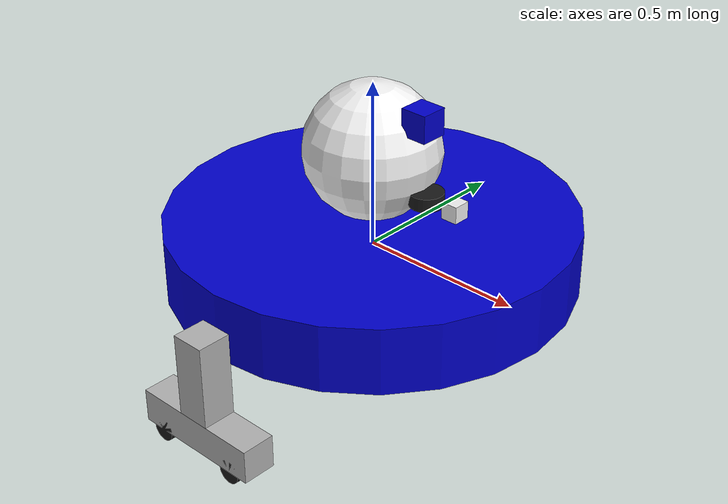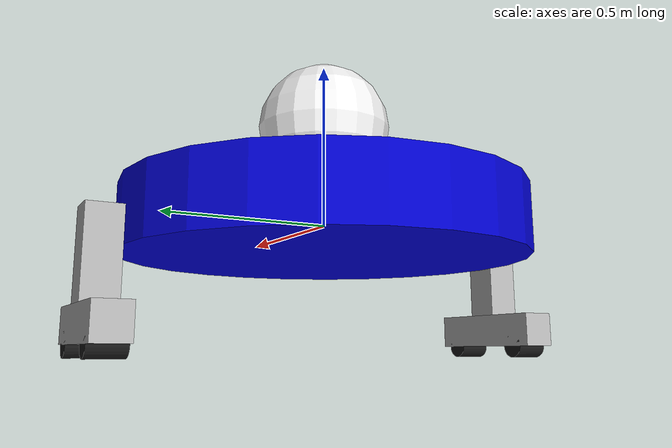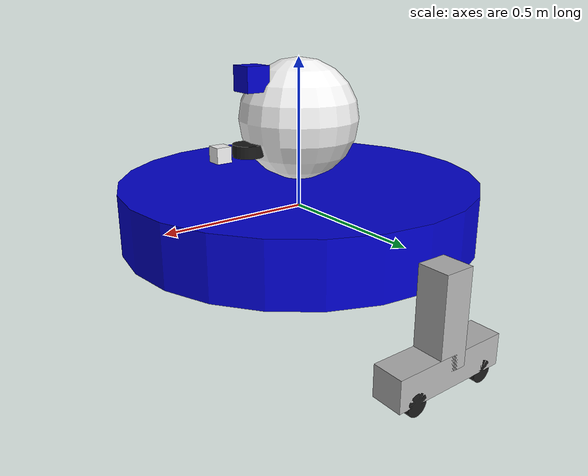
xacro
<?xml version="1.0"?>

<robot name="visual_robot" xmlns:xacro="http://www.ros.org/wiki/xacro">

  <xacro:include filename="$(find gazebo_robot)/robot.gazebo.xacro" />

  <!-- Константы -->
  <xacro:property name="M_PI" value="3.1415926535897931" />

  <!-- Размеры -->
  <xacro:property name="base_radius" value="0.6" />
  <xacro:property name="base_length" value="0.2" />

  <xacro:property name="leg_length" value="0.6" />
  <xacro:property name="leg_width" value="0.3" />
  <xacro:property name="leg_thickness" value="0.1" />

  <xacro:property name="base_width" value="0.4" />
  <xacro:property name="base_height" value="0.1" />

  <xacro:property name="wheel_radius" value="0.035" />
  <xacro:property name="wheel_length" value="0.1" />

  <xacro:property name="head_radius" value="0.2" />
  <xacro:property name="box_size" value="0.08" />

  <!-- Позиции -->
  <xacro:property name="leg_offset" value="0.65" />
  <xacro:property name="wheel_offset" value="0.133333333333" />

  <!-- Materials для RViz -->
  <material name="blue">
    <color rgba="0 0 0.8 1"/>
  </material>
  <material name="black">
    <color rgba="0.1 0.1 0.1 1"/>
  </material>
  <material name="white">
    <color rgba="0.95 0.95 0.95 1"/>
  </material>
  <material name="gray">
    <color rgba="0.7 0.7 0.7 1"/>
  </material>

  <!-- Основная база -->
  <link name="base_link">
    <visual>
      <geometry>
        <cylinder length="${base_length}" radius="${base_radius}"/>
      </geometry>
      <material name="blue"/>
    </visual>
    <collision>
      <geometry>
        <cylinder length="${base_length}" radius="${base_radius}"/>
      </geometry>
    </collision>
    <inertial>
      <mass value="2.0"/>
      <inertia ixx="0.1" ixy="0.0" ixz="0.0" iyy="0.1" iyz="0.0" izz="0.1"/>
    </inertial>
  </link>

  <!-- Макрос для создания ноги -->
  <xacro:macro name="create_leg" params="side">
    <link name="${side}_leg">
      <visual>
        <geometry>
          <box size="${leg_thickness} ${leg_thickness} ${leg_width}"/>
        </geometry>
        <material name="gray"/>
      </visual>
      <collision>
        <geometry>
          <box size="${leg_thickness} ${leg_thickness} ${leg_width}"/>
        </geometry>
      </collision>
      <inertial>
        <mass value="0.5"/>
        <inertia ixx="0.001" ixy="0.0" ixz="0.0" iyy="0.001" iyz="0.0" izz="0.001"/>
      </inertial>
    </link>

    <joint name="base_to_${side}_leg" type="fixed">
      <parent link="base_link"/>
      <child link="${side}_leg"/>
      <!-- Ноги крепятся к боковой поверхности базы -->
      <origin xyz="0 ${(1 if side == 'left' else -1) * (base_radius + leg_thickness/2)} ${-leg_width/2}" rpy="0 0 0"/>
    </joint>

    <link name="${side}_base">
      <visual>
        <geometry>
          <box size="${base_width} ${base_height} ${base_height}"/>
        </geometry>
        <material name="gray"/>
      </visual>
      <collision>
        <geometry>
          <box size="${base_width} ${base_height} ${base_height}"/>
        </geometry>
      </collision>
      <inertial>
        <mass value="0.3"/>
        <inertia ixx="0.001" ixy="0.0" ixz="0.0" iyy="0.001" iyz="0.0" izz="0.001"/>
      </inertial>
    </link>

    <joint name="${side}_base_joint" type="fixed">
      <parent link="${side}_leg"/>
      <child link="${side}_base"/>
      <!-- Основание крепится в конце ноги -->
      <origin xyz="0 0 ${-leg_width/2}" rpy="0 0 0"/>
    </joint>

    <!-- Макрос для создания колеса -->
    <xacro:macro name="create_wheel" params="position">
      <link name="${side}_${position}_wheel">
        <visual>
          <origin rpy="${M_PI/2} 0 0" xyz="0 0 0"/>
          <geometry>
            <cylinder length="${wheel_length}" radius="${wheel_radius}"/>
          </geometry>
          <material name="black"/>
        </visual>
        <collision>
          <origin rpy="${M_PI/2} 0 0" xyz="0 0 0"/>
          <geometry>
            <cylinder length="${wheel_length}" radius="${wheel_radius}"/>
          </geometry>
        </collision>
        <inertial>
          <mass value="0.1"/>
          <inertia ixx="0.0001" ixy="0.0" ixz="0.0" iyy="0.0001" iyz="0.0" izz="0.0001"/>
        </inertial>
      </link>

      <joint name="${side}_${position}_wheel_joint" type="continuous">
        <parent link="${side}_base"/>
        <child link="${side}_${position}_wheel"/>
        <!-- Колеса крепятся снизу основания -->
        <origin xyz="${(1 if position == 'front' else -1) * wheel_offset} 0 ${-base_height/2}" rpy="0 0 0"/>
        <axis xyz="0 1 0"/>
      </joint>
    </xacro:macro>

    <!-- Создание переднего и заднего колеса -->
    <xacro:create_wheel position="front"/>
    <xacro:create_wheel position="back"/>
  </xacro:macro>

  <!-- Создание ног -->
  <xacro:create_leg side="right"/>
  <xacro:create_leg side="left"/>

  <!-- Голова -->
  <link name="head">
    <visual>
      <geometry>
        <sphere radius="${head_radius}"/>
      </geometry>
      <material name="white"/>
    </visual>
    <collision>
      <geometry>
        <sphere radius="${head_radius}"/>
      </geometry>
    </collision>
    <inertial>
      <mass value="0.5"/>
      <inertia ixx="0.01" ixy="0.0" ixz="0.0" iyy="0.01" iyz="0.0" izz="0.01"/>
    </inertial>
  </link>

  <joint name="head_swivel" type="fixed">
    <parent link="base_link"/>
    <child link="head"/>
    <origin xyz="0 0 ${base_length/2 + head_radius}"/>
  </joint>

  <!-- Коробка на голове -->
  <link name="box">
    <visual>
      <geometry>
        <box size="${box_size} ${box_size} ${box_size}"/>
      </geometry>
      <material name="blue"/>
    </visual>
    <collision>
      <geometry>
        <box size="${box_size} ${box_size} ${box_size}"/>
      </geometry>
    </collision>
    <inertial>
      <mass value="0.1"/>
      <inertia ixx="0.0001" ixy="0.0" ixz="0.0" iyy="0.0001" iyz="0.0" izz="0.0001"/>
    </inertial>
  </link>

  <joint name="tobox" type="fixed">
    <parent link="head"/>
    <child link="box"/>
    <origin xyz="0.1814 0 0.1414"/>
  </joint>

  <!-- Камера -->
  <joint name="camera_joint" type="fixed">
    <parent link="base_link"/>
    <child link="camera_link"/>
    <origin xyz="0.3 0 0.22" rpy="0 0 0"/>
  </joint>

  <link name="camera_link">
    <visual>
      <geometry>
        <box size="0.05 0.05 0.05"/>
      </geometry>
      <material name="white"/>
    </visual>
    <collision>
      <geometry>
        <box size="0.05 0.05 0.05"/>
      </geometry>
    </collision>
    <inertial>
      <mass value="0.1"/>
      <inertia ixx="0.0001" ixy="0" ixz="0" iyy="0.0001" iyz="0" izz="0.0001"/>
    </inertial>
  </link>

  <joint name="lidar_joint" type="fixed">
    <parent link="base_link"/>
    <child link="lidar_link"/>
    <origin xyz="0.2 0 0.22" rpy="0 0 0"/>
  </joint>

  <link name="lidar_link">
    <visual>
      <geometry>
        <cylinder radius="0.05" length="0.04"/>
      </geometry>
      <material name="black"/>
    </visual>
    <collision>
      <geometry>
        <cylinder radius="0.05" length="0.04"/>
      </geometry>
    </collision>
    <inertial>
      <mass value="0.1"/>
      <inertia ixx="0.0001" ixy="0" ixz="0" iyy="0.0001" iyz="0" izz="0.0001"/>
    </inertial>
  </link>

  <gazebo reference="lidar_link">
    <sensor name="lidar" type="gpu_lidar">
      <pose>0 0 0 0 0 0</pose>
      <topic>scan</topic>
      <update_rate>10</update_rate>
      <gz_frame_id>lidar_link</gz_frame_id>
      <visualize>false</visualize>
      <ray>
        <scan>
          <horizontal>
            <samples>180</samples>
            <resolution>1</resolution>
            <min_angle>-3.14159</min_angle>
            <max_angle>3.14159</max_angle>
          </horizontal>
        </scan>
        <range>
          <min>0.15</min>
          <max>10.0</max>
        </range>
      </ray>
      <always_on>1</always_on>
    </sensor>
  </gazebo>

  <gazebo reference="camera_link">
    <sensor name="depth_camera" type="depth_camera">
      <pose>0 0 0 0 0 0</pose>
      <update_rate>6</update_rate>
      <topic>depth_camera</topic>
      <gz_frame_id>camera_link</gz_frame_id>
      <always_on>1</always_on>
      <visualize>true</visualize>
      <camera>
        <horizontal_fov>1.51843645</horizontal_fov>
        <image>
          <width>848</width>
          <height>480</height>
          <format>R_FLOAT32</format>
        </image>
        <clip>
          <near>0.1</near>
          <far>10</far>
        </clip>
        <lens>
          <intrinsics>
            <fx>421.61578369140625</fx>
            <fy>421.61578369140625</fy>
            <cx>422.2854309082031</cx>
            <cy>236.57237243652344</cy>
            <s>0</s>
          </intrinsics>
        </lens>
      </camera>
    </sensor>
  </gazebo>

  <plugin name="CameraInfoPlugin" filename="libgz-sim-camera-info-system.so">
    <topic>depth_camera/camera_info</topic>
  </plugin>

  <!-- IMU -->
  <joint name="imu_joint" type="fixed">
    <parent link="base_link"/>
    <child link="imu_link"/>
    <origin xyz="0 0 0.1" rpy="0 0 0"/>
  </joint>

  <link name="imu_link">
    <visual>
      <geometry>
        <box size="0.05 0.05 0.03"/>
      </geometry>
      <material name="green"/>
    </visual>
    <collision>
      <geometry>
        <box size="0.05 0.05 0.03"/>
      </geometry>
    </collision>
    <inertial>
      <mass value="0.05"/>
      <inertia ixx="0.00001" ixy="0" ixz="0" iyy="0.00001" iyz="0" izz="0.00001"/>
    </inertial>
  </link>

  <!-- Gazebo IMU Sensor -->
  <gazebo reference="imu_link">
    <sensor name="imu_sensor" type="imu">
      <always_on>true</always_on>
      <update_rate>100</update_rate>
      <topic>imu</topic>
      <gz_frame_id>imu_link</gz_frame_id>

      <imu>
        <noise>
          <type>gaussian</type>
          <!-- Rate noise -->
          <rate>
            <mean>0.0</mean>
            <stddev>0.00017</stddev>
            <bias_mean>0.0000075</bias_mean>
            <bias_stddev>0.0000008</bias_stddev>
          </rate>
          <!-- Acceleration noise -->
          <accel>
            <mean>0.0</mean>
            <stddev>0.017</stddev>  <!-- ±0.1 m/s² -->
            <bias_mean>0.1</bias_mean>
            <bias_stddev>0.001</bias_stddev>
          </accel>
        </noise>
      </imu>
    </sensor>
  </gazebo>

  <material name="green">
    <color rgba="0 0.8 0 1"/>
  </material>

  <!-- Gazebo materials (для симуляции) -->
  <gazebo reference="base_link">
    <material>Gazebo/Blue</material>
  </gazebo>

  <gazebo reference="head">
    <material>Gazebo/White</material>
  </gazebo>

  <gazebo reference="box">
    <material>Gazebo/Blue</material>
  </gazebo>

  <gazebo reference="left_leg">
    <material>Gazebo/Gray</material>
  </gazebo>

  <gazebo reference="right_leg">
    <material>Gazebo/Gray</material>
  </gazebo>

  <gazebo reference="left_base">
    <material>Gazebo/Gray</material>
  </gazebo>

  <gazebo reference="right_base">
    <material>Gazebo/Gray</material>
  </gazebo>

  <gazebo reference="left_front_wheel">
    <material>Gazebo/Black</material>
  </gazebo>

  <gazebo reference="left_back_wheel">
    <material>Gazebo/Black</material>
  </gazebo>

  <gazebo reference="right_front_wheel">
    <material>Gazebo/Black</material>
  </gazebo>

  <gazebo reference="right_back_wheel">
    <material>Gazebo/Black</material>
  </gazebo>

  <gazebo reference="imu_link">
    <material>Gazebo/Green</material>
  </gazebo>
</robot>
